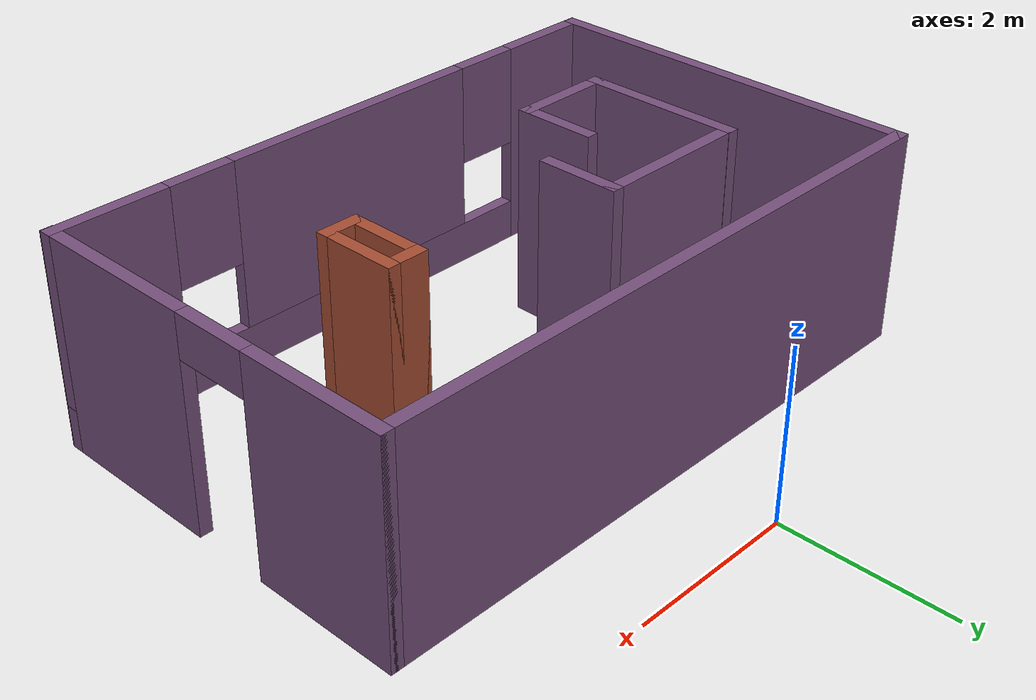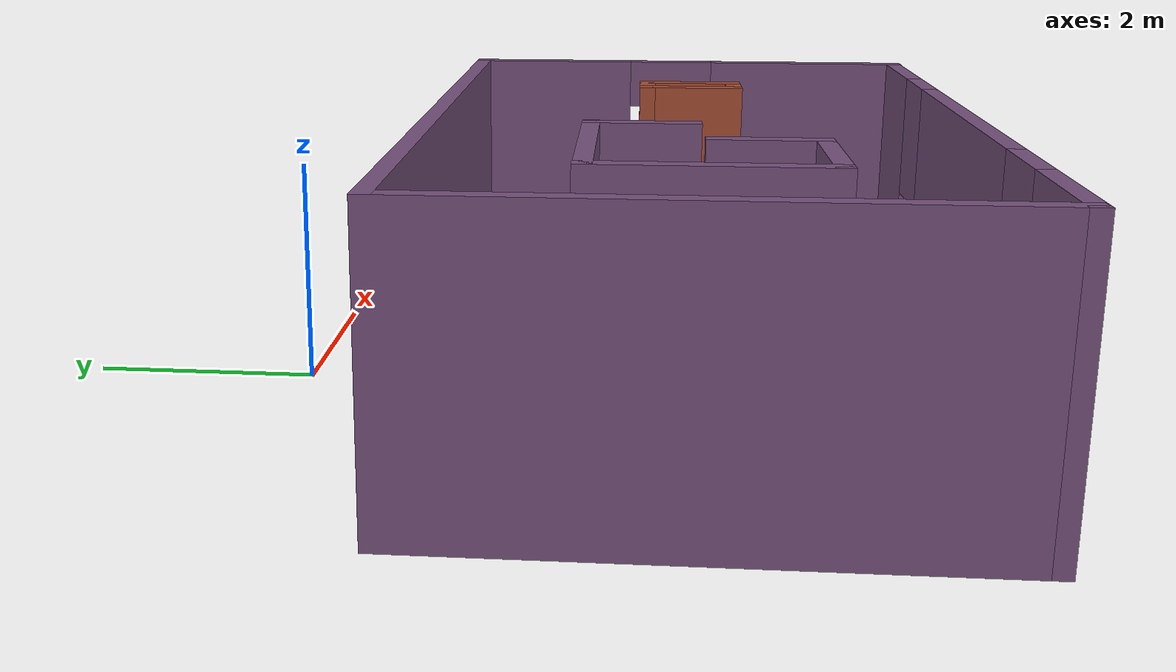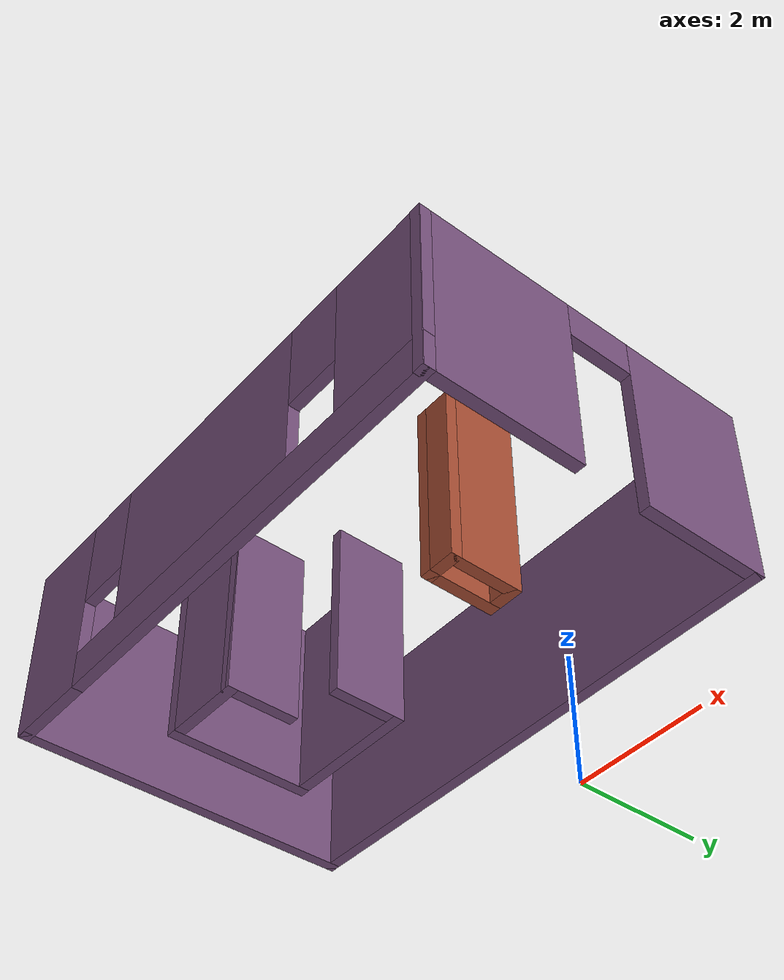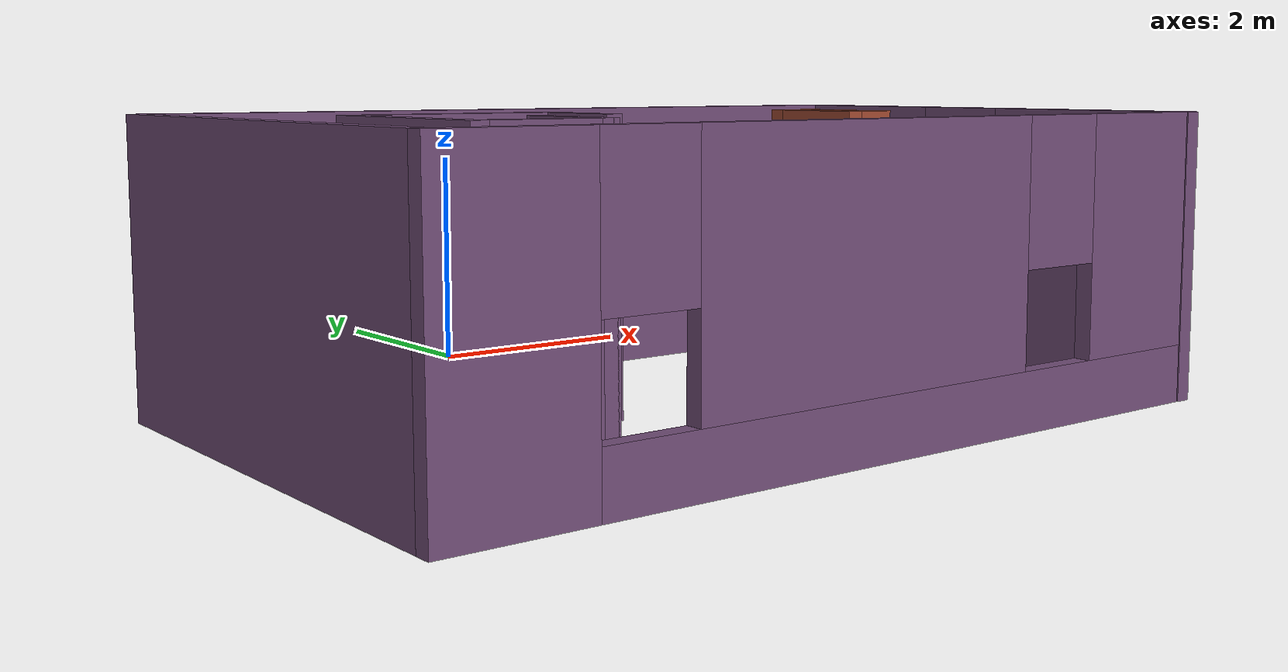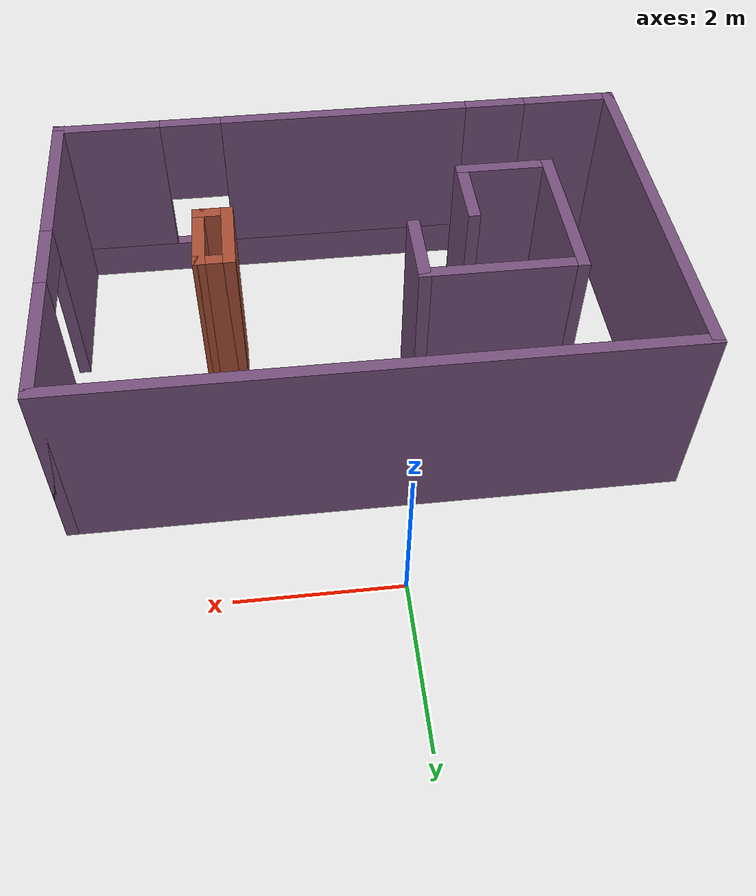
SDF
<?xml version='1.0'?>
<sdf version='1.7'>
  <model name='mybuilding'>
    <pose>0.204662 -2.9425 0 0 -0 0</pose>
    <link name='Wall_1'>
      <pose>-0 -2.85761 0 0 -0 0</pose>
      <visual name='Wall_1_Visual_0'>
        <pose>-3.133 0 1.25 0 -0 0</pose>
        <geometry>
          <box>
            <size>1.23401 0.15 2.5</size>
          </box>
        </geometry>
        <material>
          <script>
            <uri>file://media/materials/scripts/gazebo.material</uri>
            <name>Gazebo/Grey</name>
          </script>
          <ambient>0.458824 0.313726 0.482353 1</ambient>
        </material>
        <meta>
          <layer>0</layer>
        </meta>
      </visual>
      <collision name='Wall_1_Collision_0'>
        <geometry>
          <box>
            <size>1.23401 0.15 2.5</size>
          </box>
        </geometry>
        <pose>-3.133 0 1.25 0 -0 0</pose>
      </collision>
      <visual name='Wall_1_Visual_1'>
        <pose>0.617005 0 0.25 0 -0 0</pose>
        <geometry>
          <box>
            <size>6.26599 0.15 0.5</size>
          </box>
        </geometry>
        <material>
          <script>
            <uri>file://media/materials/scripts/gazebo.material</uri>
            <name>Gazebo/Grey</name>
          </script>
          <ambient>0.458824 0.313726 0.482353 1</ambient>
        </material>
        <meta>
          <layer>0</layer>
        </meta>
      </visual>
      <collision name='Wall_1_Collision_1'>
        <geometry>
          <box>
            <size>6.26599 0.15 0.5</size>
          </box>
        </geometry>
        <pose>0.617005 0 0.25 0 -0 0</pose>
      </collision>
      <visual name='Wall_1_Visual_2'>
        <pose>-0.077566 0 1.5 0 -0 0</pose>
        <geometry>
          <box>
            <size>3.27685 0.15 2</size>
          </box>
        </geometry>
        <material>
          <script>
            <uri>file://media/materials/scripts/gazebo.material</uri>
            <name>Gazebo/Grey</name>
          </script>
          <ambient>0.458824 0.313726 0.482353 1</ambient>
        </material>
        <meta>
          <layer>0</layer>
        </meta>
      </visual>
      <collision name='Wall_1_Collision_2'>
        <geometry>
          <box>
            <size>3.27685 0.15 2</size>
          </box>
        </geometry>
        <pose>-0.077566 0 1.5 0 -0 0</pose>
      </collision>
      <visual name='Wall_1_Visual_3'>
        <pose>3.05543 0 1.5 0 -0 0</pose>
        <geometry>
          <box>
            <size>1.38914 0.15 2</size>
          </box>
        </geometry>
        <material>
          <script>
            <uri>file://media/materials/scripts/gazebo.material</uri>
            <name>Gazebo/Grey</name>
          </script>
          <ambient>0.458824 0.313726 0.482353 1</ambient>
        </material>
        <meta>
          <layer>0</layer>
        </meta>
      </visual>
      <collision name='Wall_1_Collision_3'>
        <geometry>
          <box>
            <size>1.38914 0.15 2</size>
          </box>
        </geometry>
        <pose>3.05543 0 1.5 0 -0 0</pose>
      </collision>
      <visual name='Wall_1_Visual_4'>
        <pose>-2.11599 0 1.9 0 -0 0</pose>
        <geometry>
          <box>
            <size>0.8 0.15 1.2</size>
          </box>
        </geometry>
        <material>
          <script>
            <uri>file://media/materials/scripts/gazebo.material</uri>
            <name>Gazebo/Grey</name>
          </script>
          <ambient>0.458824 0.313726 0.482353 1</ambient>
        </material>
        <meta>
          <layer>0</layer>
        </meta>
      </visual>
      <collision name='Wall_1_Collision_4'>
        <geometry>
          <box>
            <size>0.8 0.15 1.2</size>
          </box>
        </geometry>
        <pose>-2.11599 0 1.9 0 -0 0</pose>
      </collision>
      <visual name='Wall_1_Visual_5'>
        <pose>1.96086 0 1.9 0 -0 0</pose>
        <geometry>
          <box>
            <size>0.8 0.15 1.2</size>
          </box>
        </geometry>
        <material>
          <script>
            <uri>file://media/materials/scripts/gazebo.material</uri>
            <name>Gazebo/Grey</name>
          </script>
          <ambient>0.458824 0.313726 0.482353 1</ambient>
        </material>
        <meta>
          <layer>0</layer>
        </meta>
      </visual>
      <collision name='Wall_1_Collision_5'>
        <geometry>
          <box>
            <size>0.8 0.15 1.2</size>
          </box>
        </geometry>
        <pose>1.96086 0 1.9 0 -0 0</pose>
      </collision>
    </link>
    <link name='Wall_25'>
      <collision name='Wall_25_Collision'>
        <geometry>
          <box>
            <size>1 0.15 2.5</size>
          </box>
        </geometry>
        <pose>0 0 1.25 0 -0 0</pose>
      </collision>
      <visual name='Wall_25_Visual'>
        <pose>0 0 1.25 0 -0 0</pose>
        <geometry>
          <box>
            <size>1 0.15 2.5</size>
          </box>
        </geometry>
        <material>
          <script>
            <uri>file://media/materials/scripts/gazebo.material</uri>
            <name>Gazebo/Bricks</name>
          </script>
          <ambient>1 1 1 1</ambient>
        </material>
        <meta>
          <layer>0</layer>
        </meta>
      </visual>
      <pose>1.5329 -0.543166 0 0 -0 -1.5708</pose>
    </link>
    <link name='Wall_48'>
      <collision name='Wall_48_Collision'>
        <geometry>
          <box>
            <size>2 0.15 2.5</size>
          </box>
        </geometry>
        <pose>0 0 1.25 0 -0 0</pose>
      </collision>
      <visual name='Wall_48_Visual'>
        <pose>0 0 1.25 0 -0 0</pose>
        <geometry>
          <box>
            <size>2 0.15 2.5</size>
          </box>
        </geometry>
        <material>
          <script>
            <uri>file://media/materials/scripts/gazebo.material</uri>
            <name>Gazebo/Grey</name>
          </script>
          <ambient>0.458824 0.313726 0.482353 1</ambient>
        </material>
        <meta>
          <layer>0</layer>
        </meta>
      </visual>
      <pose>-2.53106 -0.558923 0 0 -0 -1.5708</pose>
    </link>
    <link name='Wall_54'>
      <collision name='Wall_54_Collision'>
        <geometry>
          <box>
            <size>1 0.15 2.5</size>
          </box>
        </geometry>
        <pose>0 0 1.25 0 -0 0</pose>
      </collision>
      <visual name='Wall_54_Visual'>
        <pose>0 0 1.25 0 -0 0</pose>
        <geometry>
          <box>
            <size>1 0.15 2.5</size>
          </box>
        </geometry>
        <material>
          <script>
            <uri>file://media/materials/scripts/gazebo.material</uri>
            <name>Gazebo/Grey</name>
          </script>
          <ambient>0.458824 0.313726 0.482353 1</ambient>
        </material>
        <meta>
          <layer>0</layer>
        </meta>
      </visual>
      <pose>-0.680946 -0.062487 0 0 -0 1.5708</pose>
    </link>
    <link name='Wall_55'>
      <collision name='Wall_55_Collision'>
        <geometry>
          <box>
            <size>2 0.15 2.5</size>
          </box>
        </geometry>
        <pose>0 0 1.25 0 -0 0</pose>
      </collision>
      <visual name='Wall_55_Visual'>
        <pose>0 0 1.25 0 -0 0</pose>
        <geometry>
          <box>
            <size>2 0.15 2.5</size>
          </box>
        </geometry>
        <material>
          <script>
            <uri>file://media/materials/scripts/gazebo.material</uri>
            <name>Gazebo/Grey</name>
          </script>
          <ambient>0.458824 0.313726 0.482353 1</ambient>
        </material>
        <meta>
          <layer>0</layer>
        </meta>
      </visual>
      <pose>-1.60595 0.362513 0 0 -0 3.14159</pose>
    </link>
    <link name='Wall_57'>
      <collision name='Wall_57_Collision'>
        <geometry>
          <box>
            <size>0.5 0.15 2.5</size>
          </box>
        </geometry>
        <pose>0 0 1.25 0 -0 0</pose>
      </collision>
      <visual name='Wall_57_Visual'>
        <pose>0 0 1.25 0 -0 0</pose>
        <geometry>
          <box>
            <size>0.5 0.15 2.5</size>
          </box>
        </geometry>
        <material>
          <script>
            <uri>file://media/materials/scripts/gazebo.material</uri>
            <name>Gazebo/Bricks</name>
          </script>
          <ambient>1 1 1 1</ambient>
        </material>
        <meta>
          <layer>0</layer>
        </meta>
      </visual>
      <pose>1.7079 -0.118166 0 0 -0 0</pose>
    </link>
    <link name='Wall_58'>
      <collision name='Wall_58_Collision'>
        <geometry>
          <box>
            <size>1 0.15 2.5</size>
          </box>
        </geometry>
        <pose>0 0 1.25 0 -0 0</pose>
      </collision>
      <visual name='Wall_58_Visual'>
        <pose>0 0 1.25 0 -0 0</pose>
        <geometry>
          <box>
            <size>1 0.15 2.5</size>
          </box>
        </geometry>
        <material>
          <script>
            <uri>file://media/materials/scripts/gazebo.material</uri>
            <name>Gazebo/Bricks</name>
          </script>
          <ambient>1 1 1 1</ambient>
        </material>
        <meta>
          <layer>0</layer>
        </meta>
      </visual>
      <pose>1.8829 -0.543166 0 0 -0 -1.5708</pose>
    </link>
    <link name='Wall_59'>
      <collision name='Wall_59_Collision'>
        <geometry>
          <box>
            <size>0.5 0.15 2.5</size>
          </box>
        </geometry>
        <pose>0 0 1.25 0 -0 0</pose>
      </collision>
      <visual name='Wall_59_Visual'>
        <pose>0 0 1.25 0 -0 0</pose>
        <geometry>
          <box>
            <size>0.5 0.15 2.5</size>
          </box>
        </geometry>
        <material>
          <script>
            <uri>file://media/materials/scripts/gazebo.material</uri>
            <name>Gazebo/Bricks</name>
          </script>
          <ambient>0.458824 0.313726 0.482353 1</ambient>
        </material>
        <meta>
          <layer>0</layer>
        </meta>
      </visual>
      <pose>1.7079 -0.968166 0 0 -0 3.14159</pose>
    </link>
    <link name='Wall_61'>
      <collision name='Wall_61_Collision'>
        <geometry>
          <box>
            <size>4.73022 0.15 2.5</size>
          </box>
        </geometry>
        <pose>0 0 1.25 0 -0 0</pose>
      </collision>
      <visual name='Wall_61_Visual'>
        <pose>0 0 1.25 0 -0 0</pose>
        <geometry>
          <box>
            <size>4.73022 0.15 2.5</size>
          </box>
        </geometry>
        <material>
          <script>
            <uri>file://media/materials/scripts/gazebo.material</uri>
            <name>Gazebo/Grey</name>
          </script>
          <ambient>0.458824 0.313726 0.482353 1</ambient>
        </material>
        <meta>
          <layer>0</layer>
        </meta>
      </visual>
      <pose>-3.675 -0.557612 0 0 -0 1.5708</pose>
    </link>
    <link name='Wall_62'>
      <collision name='Wall_62_Collision'>
        <geometry>
          <box>
            <size>7.5 0.15 2.5</size>
          </box>
        </geometry>
        <pose>0 0 1.25 0 -0 0</pose>
      </collision>
      <visual name='Wall_62_Visual'>
        <pose>0 0 1.25 0 -0 0</pose>
        <geometry>
          <box>
            <size>7.5 0.15 2.5</size>
          </box>
        </geometry>
        <material>
          <script>
            <uri>file://media/materials/scripts/gazebo.material</uri>
            <name>Gazebo/Grey</name>
          </script>
          <ambient>0.458824 0.313726 0.482353 1</ambient>
        </material>
        <meta>
          <layer>0</layer>
        </meta>
      </visual>
      <pose>-0 1.7325 0 0 -0 0</pose>
    </link>
    <link name='Wall_63'>
      <pose>3.675 -0.5675 0 0 -0 -1.5708</pose>
      <visual name='Wall_63_Visual_0'>
        <pose>-1.5023 0 1.25 0 -0 0</pose>
        <geometry>
          <box>
            <size>1.7454 0.15 2.5</size>
          </box>
        </geometry>
        <material>
          <script>
            <uri>file://media/materials/scripts/gazebo.material</uri>
            <name>Gazebo/Grey</name>
          </script>
          <ambient>0.458824 0.313726 0.482353 1</ambient>
        </material>
        <meta>
          <layer>0</layer>
        </meta>
      </visual>
      <collision name='Wall_63_Collision_0'>
        <geometry>
          <box>
            <size>1.7454 0.15 2.5</size>
          </box>
        </geometry>
        <pose>-1.5023 0 1.25 0 -0 0</pose>
      </collision>
      <visual name='Wall_63_Visual_1'>
        <pose>1.3227 0 1.25 0 -0 0</pose>
        <geometry>
          <box>
            <size>2.1046 0.15 2.5</size>
          </box>
        </geometry>
        <material>
          <script>
            <uri>file://media/materials/scripts/gazebo.material</uri>
            <name>Gazebo/Grey</name>
          </script>
          <ambient>0.458824 0.313726 0.482353 1</ambient>
        </material>
        <meta>
          <layer>0</layer>
        </meta>
      </visual>
      <collision name='Wall_63_Collision_1'>
        <geometry>
          <box>
            <size>2.1046 0.15 2.5</size>
          </box>
        </geometry>
        <pose>1.3227 0 1.25 0 -0 0</pose>
      </collision>
      <visual name='Wall_63_Visual_2'>
        <pose>-0.179603 0 2.25 0 -0 0</pose>
        <geometry>
          <box>
            <size>0.9 0.15 0.5</size>
          </box>
        </geometry>
        <material>
          <script>
            <uri>file://media/materials/scripts/gazebo.material</uri>
            <name>Gazebo/Grey</name>
          </script>
          <ambient>0.458824 0.313726 0.482353 1</ambient>
        </material>
        <meta>
          <layer>0</layer>
        </meta>
      </visual>
      <collision name='Wall_63_Collision_2'>
        <geometry>
          <box>
            <size>0.9 0.15 0.5</size>
          </box>
        </geometry>
        <pose>-0.179603 0 2.25 0 -0 0</pose>
      </collision>
    </link>
    <link name='Wall_71'>
      <collision name='Wall_71_Collision'>
        <geometry>
          <box>
            <size>1.25 0.15 2.5</size>
          </box>
        </geometry>
        <pose>0 0 1.25 0 -0 0</pose>
      </collision>
      <visual name='Wall_71_Visual'>
        <pose>0 0 1.25 0 -0 0</pose>
        <geometry>
          <box>
            <size>1.25 0.15 2.5</size>
          </box>
        </geometry>
        <material>
          <script>
            <uri>file://media/materials/scripts/gazebo.material</uri>
            <name>Gazebo/Grey</name>
          </script>
          <ambient>0.458824 0.313726 0.482353 1</ambient>
        </material>
        <meta>
          <layer>0</layer>
        </meta>
      </visual>
      <pose>-1.98106 -1.48392 0 0 -0 0</pose>
    </link>
    <link name='Wall_72'>
      <collision name='Wall_72_Collision'>
        <geometry>
          <box>
            <size>1 0.15 2.5</size>
          </box>
        </geometry>
        <pose>0 0 1.25 0 -0 0</pose>
      </collision>
      <visual name='Wall_72_Visual'>
        <pose>0 0 1.25 0 -0 0</pose>
        <geometry>
          <box>
            <size>1 0.15 2.5</size>
          </box>
        </geometry>
        <material>
          <script>
            <uri>file://media/materials/scripts/gazebo.material</uri>
            <name>Gazebo/Grey</name>
          </script>
          <ambient>0.458824 0.313726 0.482353 1</ambient>
        </material>
        <meta>
          <layer>0</layer>
        </meta>
      </visual>
      <pose>-1.43106 -1.05892 0 0 -0 1.5708</pose>
    </link>
    <static>1</static>
  </model>
</sdf>
